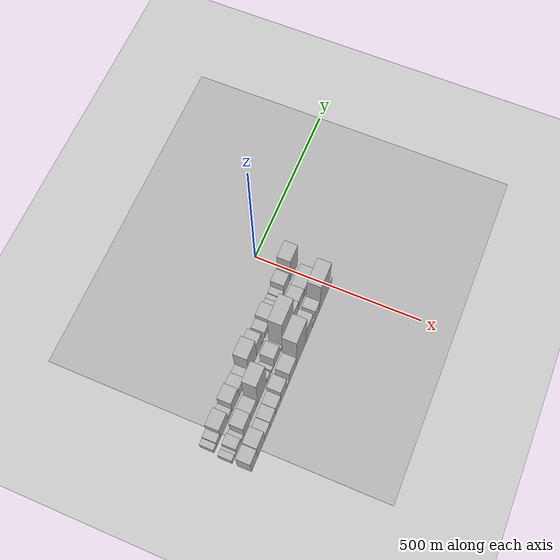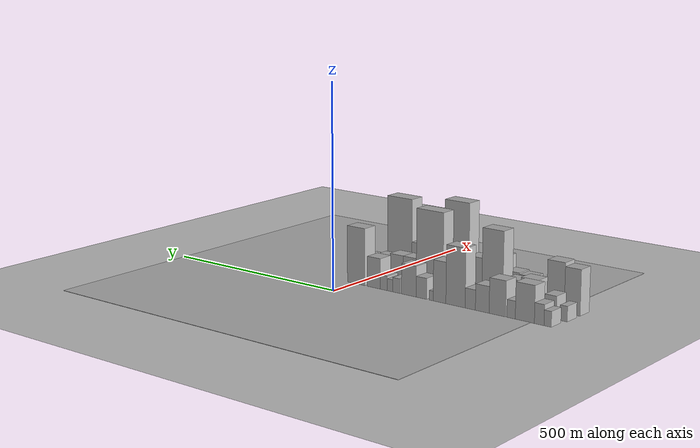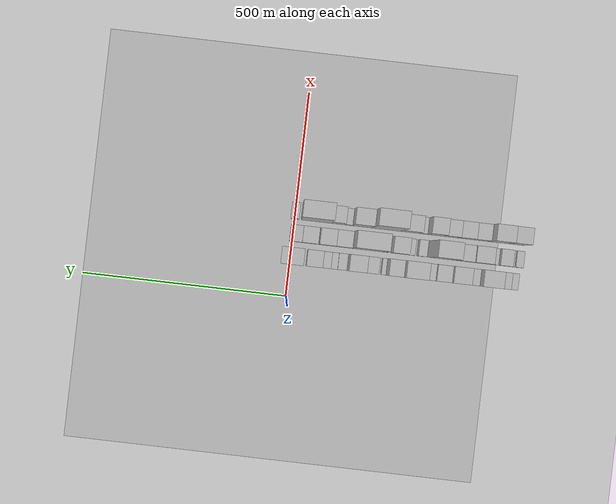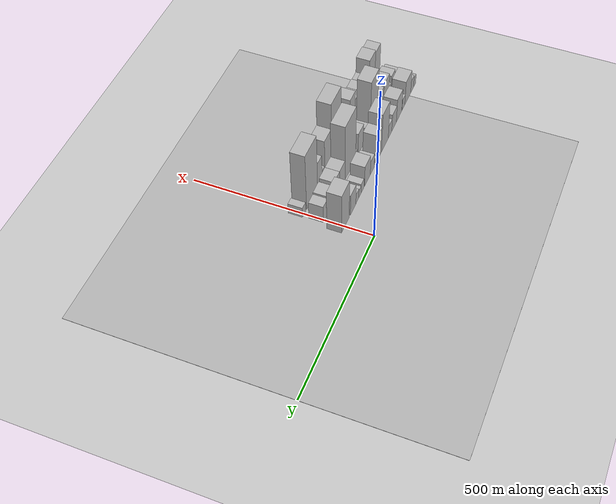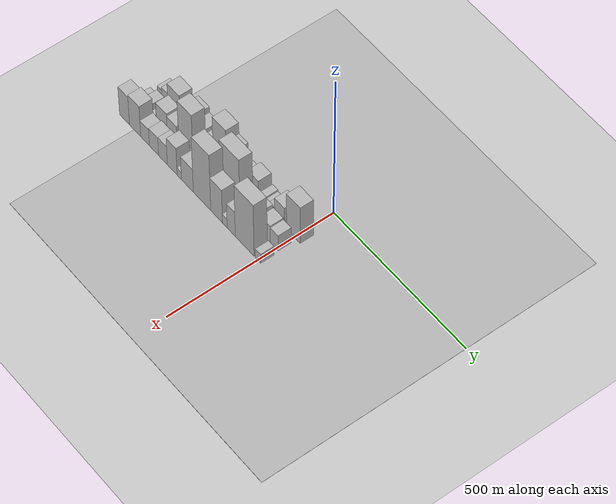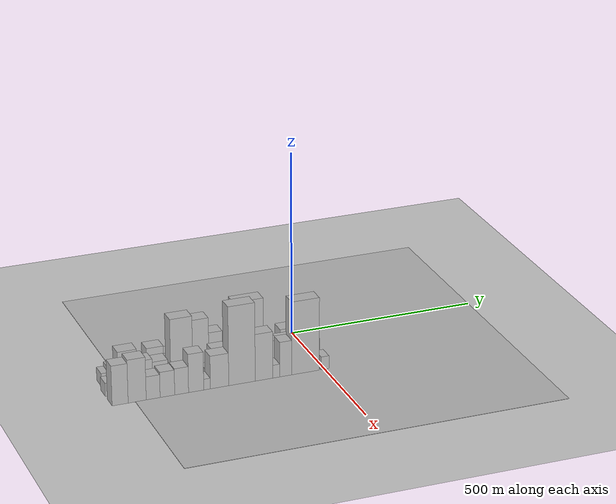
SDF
<sdf version="1.6">
 <world name="default">
  <include><name>ground_plane_1</name><uri>model://HANNAS_ground_plane</uri></include>
  <include>
   <name>ground_plane_2</name>
   <uri>model://HANNAS_ground_plane</uri>
   <pose>100 0 0  0 0 0</pose>
  </include>
  <model name="building_1">
   <static>1</static>
   <pose>100.0000 -543.7677 0 0.000000 0.000000 0.000000</pose>
   <link name="link">
    <pose>0 0 18.00 0 0 0</pose>
    <collision name="collision"><geometry><box><size>40.0000 18.4647 36.0000</size></box></geometry></collision>
    <visual name="visual">
     <cast_shadows>0</cast_shadows>
     <geometry><box><size>40.0000 18.4647 36.0000</size></box></geometry>
     <material>
      <script>
       <uri>model://HANNAS_wall/materials/scripts</uri>
       <uri>model://HANNAS_wall/materials/textures</uri>
       <name>vrc/HANNAS_wall</name>
      </script>
     </material>
    </visual>
   </link>
  </model>
  <model name="building_2">
   <static>1</static>
   <pose>100.0000 -522.0372 0 0.000000 0.000000 0.000000</pose>
   <link name="link">
    <pose>0 0 24.00 0 0 0</pose>
    <collision name="collision"><geometry><box><size>40.0000 24.9964 48.0000</size></box></geometry></collision>
    <visual name="visual">
     <cast_shadows>0</cast_shadows>
     <geometry><box><size>40.0000 24.9964 48.0000</size></box></geometry>
     <material>
      <script>
       <uri>model://HANNAS_wall/materials/scripts</uri>
       <uri>model://HANNAS_wall/materials/textures</uri>
       <name>vrc/HANNAS_wall</name>
      </script>
     </material>
    </visual>
   </link>
  </model>
  <model name="building_3">
   <static>1</static>
   <pose>100.0000 -484.5525 0 0.000000 0.000000 0.000000</pose>
   <link name="link">
    <pose>0 0 43.50 0 0 0</pose>
    <collision name="collision"><geometry><box><size>40.0000 49.9729 87.0000</size></box></geometry></collision>
    <visual name="visual">
     <cast_shadows>0</cast_shadows>
     <geometry><box><size>40.0000 49.9729 87.0000</size></box></geometry>
     <material>
      <script>
       <uri>model://HANNAS_wall/materials/scripts</uri>
       <uri>model://HANNAS_wall/materials/textures</uri>
       <name>vrc/HANNAS_wall</name>
      </script>
     </material>
    </visual>
   </link>
  </model>
  <model name="building_4">
   <static>1</static>
   <pose>100.0000 -448.2868 0 0.000000 0.000000 0.000000</pose>
   <link name="link">
    <pose>0 0 21.00 0 0 0</pose>
    <collision name="collision"><geometry><box><size>40.0000 22.5584 42.0000</size></box></geometry></collision>
    <visual name="visual">
     <cast_shadows>0</cast_shadows>
     <geometry><box><size>40.0000 22.5584 42.0000</size></box></geometry>
     <material>
      <script>
       <uri>model://HANNAS_wall/materials/scripts</uri>
       <uri>model://HANNAS_wall/materials/textures</uri>
       <name>vrc/HANNAS_wall</name>
      </script>
     </material>
    </visual>
   </link>
  </model>
  <model name="building_5">
   <static>1</static>
   <pose>100.0000 -411.7803 0 0.000000 0.000000 0.000000</pose>
   <link name="link">
    <pose>0 0 42.00 0 0 0</pose>
    <collision name="collision"><geometry><box><size>40.0000 44.4546 84.0000</size></box></geometry></collision>
    <visual name="visual">
     <cast_shadows>0</cast_shadows>
     <geometry><box><size>40.0000 44.4546 84.0000</size></box></geometry>
     <material>
      <script>
       <uri>model://HANNAS_wall/materials/scripts</uri>
       <uri>model://HANNAS_wall/materials/textures</uri>
       <name>vrc/HANNAS_wall</name>
      </script>
     </material>
    </visual>
   </link>
  </model>
  <model name="building_6">
   <static>1</static>
   <pose>100.0000 -370.8900 0 0.000000 0.000000 0.000000</pose>
   <link name="link">
    <pose>0 0 31.50 0 0 0</pose>
    <collision name="collision"><geometry><box><size>40.0000 37.3261 63.0000</size></box></geometry></collision>
    <visual name="visual">
     <cast_shadows>0</cast_shadows>
     <geometry><box><size>40.0000 37.3261 63.0000</size></box></geometry>
     <material>
      <script>
       <uri>model://HANNAS_wall/materials/scripts</uri>
       <uri>model://HANNAS_wall/materials/textures</uri>
       <name>vrc/HANNAS_wall</name>
      </script>
     </material>
    </visual>
   </link>
  </model>
  <model name="building_7">
   <static>1</static>
   <pose>100.0000 -338.0870 0 0.000000 0.000000 0.000000</pose>
   <link name="link">
    <pose>0 0 24.00 0 0 0</pose>
    <collision name="collision"><geometry><box><size>40.0000 28.2799 48.0000</size></box></geometry></collision>
    <visual name="visual">
     <cast_shadows>0</cast_shadows>
     <geometry><box><size>40.0000 28.2799 48.0000</size></box></geometry>
     <material>
      <script>
       <uri>model://HANNAS_wall/materials/scripts</uri>
       <uri>model://HANNAS_wall/materials/textures</uri>
       <name>vrc/HANNAS_wall</name>
      </script>
     </material>
    </visual>
   </link>
  </model>
  <model name="building_8">
   <static>1</static>
   <pose>100.0000 -297.0090 0 0.000000 0.000000 0.000000</pose>
   <link name="link">
    <pose>0 0 70.50 0 0 0</pose>
    <collision name="collision"><geometry><box><size>40.0000 53.8760 141.0000</size></box></geometry></collision>
    <visual name="visual">
     <cast_shadows>0</cast_shadows>
     <geometry><box><size>40.0000 53.8760 141.0000</size></box></geometry>
     <material>
      <script>
       <uri>model://HANNAS_wall/materials/scripts</uri>
       <uri>model://HANNAS_wall/materials/textures</uri>
       <name>vrc/HANNAS_wall</name>
      </script>
     </material>
    </visual>
   </link>
  </model>
  <model name="building_9">
   <static>1</static>
   <pose>100.0000 -251.9656 0 0.000000 0.000000 0.000000</pose>
   <link name="link">
    <pose>0 0 49.50 0 0 0</pose>
    <collision name="collision"><geometry><box><size>40.0000 36.2107 99.0000</size></box></geometry></collision>
    <visual name="visual">
     <cast_shadows>0</cast_shadows>
     <geometry><box><size>40.0000 36.2107 99.0000</size></box></geometry>
     <material>
      <script>
       <uri>model://HANNAS_wall/materials/scripts</uri>
       <uri>model://HANNAS_wall/materials/textures</uri>
       <name>vrc/HANNAS_wall</name>
      </script>
     </material>
    </visual>
   </link>
  </model>
  <model name="building_10">
   <static>1</static>
   <pose>100.0000 -228.2909 0 0.000000 0.000000 0.000000</pose>
   <link name="link">
    <pose>0 0 12.00 0 0 0</pose>
    <collision name="collision"><geometry><box><size>40.0000 11.1388 24.0000</size></box></geometry></collision>
    <visual name="visual">
     <cast_shadows>0</cast_shadows>
     <geometry><box><size>40.0000 11.1388 24.0000</size></box></geometry>
     <material>
      <script>
       <uri>model://HANNAS_wall/materials/scripts</uri>
       <uri>model://HANNAS_wall/materials/textures</uri>
       <name>vrc/HANNAS_wall</name>
      </script>
     </material>
    </visual>
   </link>
  </model>
  <model name="building_11">
   <static>1</static>
   <pose>100.0000 -199.6961 0 0.000000 0.000000 0.000000</pose>
   <link name="link">
    <pose>0 0 25.50 0 0 0</pose>
    <collision name="collision"><geometry><box><size>40.0000 30.0507 51.0000</size></box></geometry></collision>
    <visual name="visual">
     <cast_shadows>0</cast_shadows>
     <geometry><box><size>40.0000 30.0507 51.0000</size></box></geometry>
     <material>
      <script>
       <uri>model://HANNAS_wall/materials/scripts</uri>
       <uri>model://HANNAS_wall/materials/textures</uri>
       <name>vrc/HANNAS_wall</name>
      </script>
     </material>
    </visual>
   </link>
  </model>
  <model name="building_12">
   <static>1</static>
   <pose>100.0000 -163.0340 0 0.000000 0.000000 0.000000</pose>
   <link name="link">
    <pose>0 0 37.50 0 0 0</pose>
    <collision name="collision"><geometry><box><size>40.0000 43.2736 75.0000</size></box></geometry></collision>
    <visual name="visual">
     <cast_shadows>0</cast_shadows>
     <geometry><box><size>40.0000 43.2736 75.0000</size></box></geometry>
     <material>
      <script>
       <uri>model://HANNAS_wall/materials/scripts</uri>
       <uri>model://HANNAS_wall/materials/textures</uri>
       <name>vrc/HANNAS_wall</name>
      </script>
     </material>
    </visual>
   </link>
  </model>
  <model name="building_13">
   <static>1</static>
   <pose>100.0000 -126.6479 0 0.000000 0.000000 0.000000</pose>
   <link name="link">
    <pose>0 0 18.00 0 0 0</pose>
    <collision name="collision"><geometry><box><size>40.0000 21.4987 36.0000</size></box></geometry></collision>
    <visual name="visual">
     <cast_shadows>0</cast_shadows>
     <geometry><box><size>40.0000 21.4987 36.0000</size></box></geometry>
     <material>
      <script>
       <uri>model://HANNAS_wall/materials/scripts</uri>
       <uri>model://HANNAS_wall/materials/textures</uri>
       <name>vrc/HANNAS_wall</name>
      </script>
     </material>
    </visual>
   </link>
  </model>
  <model name="building_14">
   <static>1</static>
   <pose>100.0000 -107.7903 0 0.000000 0.000000 0.000000</pose>
   <link name="link">
    <pose>0 0 15.00 0 0 0</pose>
    <collision name="collision"><geometry><box><size>40.0000 16.2166 30.0000</size></box></geometry></collision>
    <visual name="visual">
     <cast_shadows>0</cast_shadows>
     <geometry><box><size>40.0000 16.2166 30.0000</size></box></geometry>
     <material>
      <script>
       <uri>model://HANNAS_wall/materials/scripts</uri>
       <uri>model://HANNAS_wall/materials/textures</uri>
       <name>vrc/HANNAS_wall</name>
      </script>
     </material>
    </visual>
   </link>
  </model>
  <model name="building_15">
   <static>1</static>
   <pose>100.0000 -88.9805 0 0.000000 0.000000 0.000000</pose>
   <link name="link">
    <pose>0 0 18.00 0 0 0</pose>
    <collision name="collision"><geometry><box><size>40.0000 21.4029 36.0000</size></box></geometry></collision>
    <visual name="visual">
     <cast_shadows>0</cast_shadows>
     <geometry><box><size>40.0000 21.4029 36.0000</size></box></geometry>
     <material>
      <script>
       <uri>model://HANNAS_wall/materials/scripts</uri>
       <uri>model://HANNAS_wall/materials/textures</uri>
       <name>vrc/HANNAS_wall</name>
      </script>
     </material>
    </visual>
   </link>
  </model>
  <model name="building_16">
   <static>1</static>
   <pose>100.0000 -58.6805 0 0.000000 0.000000 0.000000</pose>
   <link name="link">
    <pose>0 0 37.50 0 0 0</pose>
    <collision name="collision"><geometry><box><size>40.0000 39.1971 75.0000</size></box></geometry></collision>
    <visual name="visual">
     <cast_shadows>0</cast_shadows>
     <geometry><box><size>40.0000 39.1971 75.0000</size></box></geometry>
     <material>
      <script>
       <uri>model://HANNAS_wall/materials/scripts</uri>
       <uri>model://HANNAS_wall/materials/textures</uri>
       <name>vrc/HANNAS_wall</name>
      </script>
     </material>
    </visual>
   </link>
  </model>
  <model name="building_17">
   <static>1</static>
   <pose>100.0000 -4.2618 0 0.000000 0.000000 0.000000</pose>
   <link name="link">
    <pose>0 0 70.50 0 0 0</pose>
    <collision name="collision"><geometry><box><size>40.0000 53.6403 141.0000</size></box></geometry></collision>
    <visual name="visual">
     <cast_shadows>0</cast_shadows>
     <geometry><box><size>40.0000 53.6403 141.0000</size></box></geometry>
     <material>
      <script>
       <uri>model://HANNAS_wall/materials/scripts</uri>
       <uri>model://HANNAS_wall/materials/textures</uri>
       <name>vrc/HANNAS_wall</name>
      </script>
     </material>
    </visual>
   </link>
  </model>
  <model name="building_34">
   <static>1</static>
   <pose>155.0000 -550.8006 0 0.000000 0.000000 0.000000</pose>
   <link name="link">
    <pose>0 0 18.00 0 0 0</pose>
    <collision name="collision"><geometry><box><size>40.0000 18.3988 36.0000</size></box></geometry></collision>
    <visual name="visual">
     <cast_shadows>0</cast_shadows>
     <geometry><box><size>40.0000 18.3988 36.0000</size></box></geometry>
     <material>
      <script>
       <uri>model://HANNAS_wall/materials/scripts</uri>
       <uri>model://HANNAS_wall/materials/textures</uri>
       <name>vrc/HANNAS_wall</name>
      </script>
     </material>
    </visual>
   </link>
  </model>
  <model name="building_35">
   <static>1</static>
   <pose>155.0000 -536.6350 0 0.000000 0.000000 0.000000</pose>
   <link name="link">
    <pose>0 0 12.00 0 0 0</pose>
    <collision name="collision"><geometry><box><size>40.0000 9.9324 24.0000</size></box></geometry></collision>
    <visual name="visual">
     <cast_shadows>0</cast_shadows>
     <geometry><box><size>40.0000 9.9324 24.0000</size></box></geometry>
     <material>
      <script>
       <uri>model://HANNAS_wall/materials/scripts</uri>
       <uri>model://HANNAS_wall/materials/textures</uri>
       <name>vrc/HANNAS_wall</name>
      </script>
     </material>
    </visual>
   </link>
  </model>
  <model name="building_36">
   <static>1</static>
   <pose>155.0000 -516.3487 0 0.000000 0.000000 0.000000</pose>
   <link name="link">
    <pose>0 0 27.00 0 0 0</pose>
    <collision name="collision"><geometry><box><size>40.0000 30.6402 54.0000</size></box></geometry></collision>
    <visual name="visual">
     <cast_shadows>0</cast_shadows>
     <geometry><box><size>40.0000 30.6402 54.0000</size></box></geometry>
     <material>
      <script>
       <uri>model://HANNAS_wall/materials/scripts</uri>
       <uri>model://HANNAS_wall/materials/textures</uri>
       <name>vrc/HANNAS_wall</name>
      </script>
     </material>
    </visual>
   </link>
  </model>
  <model name="building_37">
   <static>1</static>
   <pose>155.0000 -493.0272 0 0.000000 0.000000 0.000000</pose>
   <link name="link">
    <pose>0 0 15.00 0 0 0</pose>
    <collision name="collision"><geometry><box><size>40.0000 16.0028 30.0000</size></box></geometry></collision>
    <visual name="visual">
     <cast_shadows>0</cast_shadows>
     <geometry><box><size>40.0000 16.0028 30.0000</size></box></geometry>
     <material>
      <script>
       <uri>model://HANNAS_wall/materials/scripts</uri>
       <uri>model://HANNAS_wall/materials/textures</uri>
       <name>vrc/HANNAS_wall</name>
      </script>
     </material>
    </visual>
   </link>
  </model>
  <model name="building_38">
   <static>1</static>
   <pose>155.0000 -459.6206 0 0.000000 0.000000 0.000000</pose>
   <link name="link">
    <pose>0 0 40.50 0 0 0</pose>
    <collision name="collision"><geometry><box><size>40.0000 44.8104 81.0000</size></box></geometry></collision>
    <visual name="visual">
     <cast_shadows>0</cast_shadows>
     <geometry><box><size>40.0000 44.8104 81.0000</size></box></geometry>
     <material>
      <script>
       <uri>model://HANNAS_wall/materials/scripts</uri>
       <uri>model://HANNAS_wall/materials/textures</uri>
       <name>vrc/HANNAS_wall</name>
      </script>
     </material>
    </visual>
   </link>
  </model>
  <model name="building_39">
   <static>1</static>
   <pose>155.0000 -417.0408 0 0.000000 0.000000 0.000000</pose>
   <link name="link">
    <pose>0 0 36.00 0 0 0</pose>
    <collision name="collision"><geometry><box><size>40.0000 40.3492 72.0000</size></box></geometry></collision>
    <visual name="visual">
     <cast_shadows>0</cast_shadows>
     <geometry><box><size>40.0000 40.3492 72.0000</size></box></geometry>
     <material>
      <script>
       <uri>model://HANNAS_wall/materials/scripts</uri>
       <uri>model://HANNAS_wall/materials/textures</uri>
       <name>vrc/HANNAS_wall</name>
      </script>
     </material>
    </visual>
   </link>
  </model>
  <model name="building_40">
   <static>1</static>
   <pose>155.0000 -393.1645 0 0.000000 0.000000 0.000000</pose>
   <link name="link">
    <pose>0 0 9.00 0 0 0</pose>
    <collision name="collision"><geometry><box><size>40.0000 7.4033 18.0000</size></box></geometry></collision>
    <visual name="visual">
     <cast_shadows>0</cast_shadows>
     <geometry><box><size>40.0000 7.4033 18.0000</size></box></geometry>
     <material>
      <script>
       <uri>model://HANNAS_wall/materials/scripts</uri>
       <uri>model://HANNAS_wall/materials/textures</uri>
       <name>vrc/HANNAS_wall</name>
      </script>
     </material>
    </visual>
   </link>
  </model>
  <model name="building_41">
   <static>1</static>
   <pose>155.0000 -360.5943 0 0.000000 0.000000 0.000000</pose>
   <link name="link">
    <pose>0 0 90.00 0 0 0</pose>
    <collision name="collision"><geometry><box><size>40.0000 57.7371 180.0000</size></box></geometry></collision>
    <visual name="visual">
     <cast_shadows>0</cast_shadows>
     <geometry><box><size>40.0000 57.7371 180.0000</size></box></geometry>
     <material>
      <script>
       <uri>model://HANNAS_wall/materials/scripts</uri>
       <uri>model://HANNAS_wall/materials/textures</uri>
       <name>vrc/HANNAS_wall</name>
      </script>
     </material>
    </visual>
   </link>
  </model>
  <model name="building_42">
   <static>1</static>
   <pose>155.0000 -316.0157 0 0.000000 0.000000 0.000000</pose>
   <link name="link">
    <pose>0 0 18.00 0 0 0</pose>
    <collision name="collision"><geometry><box><size>40.0000 21.4200 36.0000</size></box></geometry></collision>
    <visual name="visual">
     <cast_shadows>0</cast_shadows>
     <geometry><box><size>40.0000 21.4200 36.0000</size></box></geometry>
     <material>
      <script>
       <uri>model://HANNAS_wall/materials/scripts</uri>
       <uri>model://HANNAS_wall/materials/textures</uri>
       <name>vrc/HANNAS_wall</name>
      </script>
     </material>
    </visual>
   </link>
  </model>
  <model name="building_43">
   <static>1</static>
   <pose>155.0000 -291.9751 0 0.000000 0.000000 0.000000</pose>
   <link name="link">
    <pose>0 0 13.50 0 0 0</pose>
    <collision name="collision"><geometry><box><size>40.0000 12.6612 27.0000</size></box></geometry></collision>
    <visual name="visual">
     <cast_shadows>0</cast_shadows>
     <geometry><box><size>40.0000 12.6612 27.0000</size></box></geometry>
     <material>
      <script>
       <uri>model://HANNAS_wall/materials/scripts</uri>
       <uri>model://HANNAS_wall/materials/textures</uri>
       <name>vrc/HANNAS_wall</name>
      </script>
     </material>
    </visual>
   </link>
  </model>
  <model name="building_44">
   <static>1</static>
   <pose>155.0000 -260.3991 0 0.000000 0.000000 0.000000</pose>
   <link name="link">
    <pose>0 0 39.00 0 0 0</pose>
    <collision name="collision"><geometry><box><size>40.0000 40.4910 78.0000</size></box></geometry></collision>
    <visual name="visual">
     <cast_shadows>0</cast_shadows>
     <geometry><box><size>40.0000 40.4910 78.0000</size></box></geometry>
     <material>
      <script>
       <uri>model://HANNAS_wall/materials/scripts</uri>
       <uri>model://HANNAS_wall/materials/textures</uri>
       <name>vrc/HANNAS_wall</name>
      </script>
     </material>
    </visual>
   </link>
  </model>
  <model name="building_45">
   <static>1</static>
   <pose>155.0000 -228.0364 0 0.000000 0.000000 0.000000</pose>
   <link name="link">
    <pose>0 0 13.50 0 0 0</pose>
    <collision name="collision"><geometry><box><size>40.0000 12.2343 27.0000</size></box></geometry></collision>
    <visual name="visual">
     <cast_shadows>0</cast_shadows>
     <geometry><box><size>40.0000 12.2343 27.0000</size></box></geometry>
     <material>
      <script>
       <uri>model://HANNAS_wall/materials/scripts</uri>
       <uri>model://HANNAS_wall/materials/textures</uri>
       <name>vrc/HANNAS_wall</name>
      </script>
     </material>
    </visual>
   </link>
  </model>
  <model name="building_46">
   <static>1</static>
   <pose>155.0000 -182.8427 0 0.000000 0.000000 0.000000</pose>
   <link name="link">
    <pose>0 0 99.00 0 0 0</pose>
    <collision name="collision"><geometry><box><size>40.0000 78.1531 198.0000</size></box></geometry></collision>
    <visual name="visual">
     <cast_shadows>0</cast_shadows>
     <geometry><box><size>40.0000 78.1531 198.0000</size></box></geometry>
     <material>
      <script>
       <uri>model://HANNAS_wall/materials/scripts</uri>
       <uri>model://HANNAS_wall/materials/textures</uri>
       <name>vrc/HANNAS_wall</name>
      </script>
     </material>
    </visual>
   </link>
  </model>
  <model name="building_47">
   <static>1</static>
   <pose>155.0000 -124.4117 0 0.000000 0.000000 0.000000</pose>
   <link name="link">
    <pose>0 0 37.50 0 0 0</pose>
    <collision name="collision"><geometry><box><size>40.0000 38.7090 75.0000</size></box></geometry></collision>
    <visual name="visual">
     <cast_shadows>0</cast_shadows>
     <geometry><box><size>40.0000 38.7090 75.0000</size></box></geometry>
     <material>
      <script>
       <uri>model://HANNAS_wall/materials/scripts</uri>
       <uri>model://HANNAS_wall/materials/textures</uri>
       <name>vrc/HANNAS_wall</name>
      </script>
     </material>
    </visual>
   </link>
  </model>
  <model name="building_48">
   <static>1</static>
   <pose>155.0000 -85.0469 0 0.000000 0.000000 0.000000</pose>
   <link name="link">
    <pose>0 0 37.50 0 0 0</pose>
    <collision name="collision"><geometry><box><size>40.0000 40.0205 75.0000</size></box></geometry></collision>
    <visual name="visual">
     <cast_shadows>0</cast_shadows>
     <geometry><box><size>40.0000 40.0205 75.0000</size></box></geometry>
     <material>
      <script>
       <uri>model://HANNAS_wall/materials/scripts</uri>
       <uri>model://HANNAS_wall/materials/textures</uri>
       <name>vrc/HANNAS_wall</name>
      </script>
     </material>
    </visual>
   </link>
  </model>
  <model name="building_49">
   <static>1</static>
   <pose>155.0000 -42.5896 0 0.000000 0.000000 0.000000</pose>
   <link name="link">
    <pose>0 0 33.00 0 0 0</pose>
    <collision name="collision"><geometry><box><size>40.0000 38.8941 66.0000</size></box></geometry></collision>
    <visual name="visual">
     <cast_shadows>0</cast_shadows>
     <geometry><box><size>40.0000 38.8941 66.0000</size></box></geometry>
     <material>
      <script>
       <uri>model://HANNAS_wall/materials/scripts</uri>
       <uri>model://HANNAS_wall/materials/textures</uri>
       <name>vrc/HANNAS_wall</name>
      </script>
     </material>
    </visual>
   </link>
  </model>
  <model name="building_50">
   <static>1</static>
   <pose>155.0000 -7.7787 0 0.000000 0.000000 0.000000</pose>
   <link name="link">
    <pose>0 0 30.00 0 0 0</pose>
    <collision name="collision"><geometry><box><size>40.0000 30.7278 60.0000</size></box></geometry></collision>
    <visual name="visual">
     <cast_shadows>0</cast_shadows>
     <geometry><box><size>40.0000 30.7278 60.0000</size></box></geometry>
     <material>
      <script>
       <uri>model://HANNAS_wall/materials/scripts</uri>
       <uri>model://HANNAS_wall/materials/textures</uri>
       <name>vrc/HANNAS_wall</name>
      </script>
     </material>
    </visual>
   </link>
  </model>
  <model name="building_69">
   <static>1</static>
   <pose>210.0000 -539.4022 0 0.000000 0.000000 0.000000</pose>
   <link name="link">
    <pose>0 0 54.00 0 0 0</pose>
    <collision name="collision"><geometry><box><size>40.0000 41.1955 108.0000</size></box></geometry></collision>
    <visual name="visual">
     <cast_shadows>0</cast_shadows>
     <geometry><box><size>40.0000 41.1955 108.0000</size></box></geometry>
     <material>
      <script>
       <uri>model://HANNAS_wall/materials/scripts</uri>
       <uri>model://HANNAS_wall/materials/textures</uri>
       <name>vrc/HANNAS_wall</name>
      </script>
     </material>
    </visual>
   </link>
  </model>
  <model name="building_70">
   <static>1</static>
   <pose>210.0000 -495.5633 0 0.000000 0.000000 0.000000</pose>
   <link name="link">
    <pose>0 0 58.50 0 0 0</pose>
    <collision name="collision"><geometry><box><size>40.0000 46.4823 117.0000</size></box></geometry></collision>
    <visual name="visual">
     <cast_shadows>0</cast_shadows>
     <geometry><box><size>40.0000 46.4823 117.0000</size></box></geometry>
     <material>
      <script>
       <uri>model://HANNAS_wall/materials/scripts</uri>
       <uri>model://HANNAS_wall/materials/textures</uri>
       <name>vrc/HANNAS_wall</name>
      </script>
     </material>
    </visual>
   </link>
  </model>
  <model name="building_71">
   <static>1</static>
   <pose>210.0000 -454.3490 0 0.000000 0.000000 0.000000</pose>
   <link name="link">
    <pose>0 0 31.50 0 0 0</pose>
    <collision name="collision"><geometry><box><size>40.0000 35.9462 63.0000</size></box></geometry></collision>
    <visual name="visual">
     <cast_shadows>0</cast_shadows>
     <geometry><box><size>40.0000 35.9462 63.0000</size></box></geometry>
     <material>
      <script>
       <uri>model://HANNAS_wall/materials/scripts</uri>
       <uri>model://HANNAS_wall/materials/textures</uri>
       <name>vrc/HANNAS_wall</name>
      </script>
     </material>
    </visual>
   </link>
  </model>
  <model name="building_72">
   <static>1</static>
   <pose>210.0000 -417.3780 0 0.000000 0.000000 0.000000</pose>
   <link name="link">
    <pose>0 0 34.50 0 0 0</pose>
    <collision name="collision"><geometry><box><size>40.0000 37.9959 69.0000</size></box></geometry></collision>
    <visual name="visual">
     <cast_shadows>0</cast_shadows>
     <geometry><box><size>40.0000 37.9959 69.0000</size></box></geometry>
     <material>
      <script>
       <uri>model://HANNAS_wall/materials/scripts</uri>
       <uri>model://HANNAS_wall/materials/textures</uri>
       <name>vrc/HANNAS_wall</name>
      </script>
     </material>
    </visual>
   </link>
  </model>
  <model name="building_73">
   <static>1</static>
   <pose>210.0000 -380.3522 0 0.000000 0.000000 0.000000</pose>
   <link name="link">
    <pose>0 0 36.00 0 0 0</pose>
    <collision name="collision"><geometry><box><size>40.0000 36.0558 72.0000</size></box></geometry></collision>
    <visual name="visual">
     <cast_shadows>0</cast_shadows>
     <geometry><box><size>40.0000 36.0558 72.0000</size></box></geometry>
     <material>
      <script>
       <uri>model://HANNAS_wall/materials/scripts</uri>
       <uri>model://HANNAS_wall/materials/textures</uri>
       <name>vrc/HANNAS_wall</name>
      </script>
     </material>
    </visual>
   </link>
  </model>
  <model name="building_74">
   <static>1</static>
   <pose>210.0000 -342.4402 0 0.000000 0.000000 0.000000</pose>
   <link name="link">
    <pose>0 0 52.50 0 0 0</pose>
    <collision name="collision"><geometry><box><size>40.0000 39.7682 105.0000</size></box></geometry></collision>
    <visual name="visual">
     <cast_shadows>0</cast_shadows>
     <geometry><box><size>40.0000 39.7682 105.0000</size></box></geometry>
     <material>
      <script>
       <uri>model://HANNAS_wall/materials/scripts</uri>
       <uri>model://HANNAS_wall/materials/textures</uri>
       <name>vrc/HANNAS_wall</name>
      </script>
     </material>
    </visual>
   </link>
  </model>
  <model name="building_75">
   <static>1</static>
   <pose>210.0000 -313.8817 0 0.000000 0.000000 0.000000</pose>
   <link name="link">
    <pose>0 0 15.00 0 0 0</pose>
    <collision name="collision"><geometry><box><size>40.0000 17.3487 30.0000</size></box></geometry></collision>
    <visual name="visual">
     <cast_shadows>0</cast_shadows>
     <geometry><box><size>40.0000 17.3487 30.0000</size></box></geometry>
     <material>
      <script>
       <uri>model://HANNAS_wall/materials/scripts</uri>
       <uri>model://HANNAS_wall/materials/textures</uri>
       <name>vrc/HANNAS_wall</name>
      </script>
     </material>
    </visual>
   </link>
  </model>
  <model name="building_76">
   <static>1</static>
   <pose>210.0000 -280.9880 0 0.000000 0.000000 0.000000</pose>
   <link name="link">
    <pose>0 0 45.00 0 0 0</pose>
    <collision name="collision"><geometry><box><size>40.0000 48.4388 90.0000</size></box></geometry></collision>
    <visual name="visual">
     <cast_shadows>0</cast_shadows>
     <geometry><box><size>40.0000 48.4388 90.0000</size></box></geometry>
     <material>
      <script>
       <uri>model://HANNAS_wall/materials/scripts</uri>
       <uri>model://HANNAS_wall/materials/textures</uri>
       <name>vrc/HANNAS_wall</name>
      </script>
     </material>
    </visual>
   </link>
  </model>
  <model name="building_77">
   <static>1</static>
   <pose>210.0000 -221.6760 0 0.000000 0.000000 0.000000</pose>
   <link name="link">
    <pose>0 0 108.00 0 0 0</pose>
    <collision name="collision"><geometry><box><size>40.0000 70.1851 216.0000</size></box></geometry></collision>
    <visual name="visual">
     <cast_shadows>0</cast_shadows>
     <geometry><box><size>40.0000 70.1851 216.0000</size></box></geometry>
     <material>
      <script>
       <uri>model://HANNAS_wall/materials/scripts</uri>
       <uri>model://HANNAS_wall/materials/textures</uri>
       <name>vrc/HANNAS_wall</name>
      </script>
     </material>
    </visual>
   </link>
  </model>
  <model name="building_78">
   <static>1</static>
   <pose>210.0000 -163.2290 0 0.000000 0.000000 0.000000</pose>
   <link name="link">
    <pose>0 0 64.50 0 0 0</pose>
    <collision name="collision"><geometry><box><size>40.0000 46.7090 129.0000</size></box></geometry></collision>
    <visual name="visual">
     <cast_shadows>0</cast_shadows>
     <geometry><box><size>40.0000 46.7090 129.0000</size></box></geometry>
     <material>
      <script>
       <uri>model://HANNAS_wall/materials/scripts</uri>
       <uri>model://HANNAS_wall/materials/textures</uri>
       <name>vrc/HANNAS_wall</name>
      </script>
     </material>
    </visual>
   </link>
  </model>
  <model name="building_79">
   <static>1</static>
   <pose>210.0000 -130.4958 0 0.000000 0.000000 0.000000</pose>
   <link name="link">
    <pose>0 0 18.00 0 0 0</pose>
    <collision name="collision"><geometry><box><size>40.0000 18.7573 36.0000</size></box></geometry></collision>
    <visual name="visual">
     <cast_shadows>0</cast_shadows>
     <geometry><box><size>40.0000 18.7573 36.0000</size></box></geometry>
     <material>
      <script>
       <uri>model://HANNAS_wall/materials/scripts</uri>
       <uri>model://HANNAS_wall/materials/textures</uri>
       <name>vrc/HANNAS_wall</name>
      </script>
     </material>
    </visual>
   </link>
  </model>
  <model name="building_80">
   <static>1</static>
   <pose>210.0000 -105.0839 0 0.000000 0.000000 0.000000</pose>
   <link name="link">
    <pose>0 0 48.00 0 0 0</pose>
    <collision name="collision"><geometry><box><size>40.0000 32.0667 96.0000</size></box></geometry></collision>
    <visual name="visual">
     <cast_shadows>0</cast_shadows>
     <geometry><box><size>40.0000 32.0667 96.0000</size></box></geometry>
     <material>
      <script>
       <uri>model://HANNAS_wall/materials/scripts</uri>
       <uri>model://HANNAS_wall/materials/textures</uri>
       <name>vrc/HANNAS_wall</name>
      </script>
     </material>
    </visual>
   </link>
  </model>
  <model name="building_81">
   <static>1</static>
   <pose>210.0000 -51.9729 0 0.000000 0.000000 0.000000</pose>
   <link name="link">
    <pose>0 0 100.50 0 0 0</pose>
    <collision name="collision"><geometry><box><size>40.0000 74.1553 201.0000</size></box></geometry></collision>
    <visual name="visual">
     <cast_shadows>0</cast_shadows>
     <geometry><box><size>40.0000 74.1553 201.0000</size></box></geometry>
     <material>
      <script>
       <uri>model://HANNAS_wall/materials/scripts</uri>
       <uri>model://HANNAS_wall/materials/textures</uri>
       <name>vrc/HANNAS_wall</name>
      </script>
     </material>
    </visual>
   </link>
  </model>
  <model name="building_82">
   <static>1</static>
   <pose>210.0000 0.6866 0 0.000000 0.000000 0.000000</pose>
   <link name="link">
    <pose>0 0 18.00 0 0 0</pose>
    <collision name="collision"><geometry><box><size>40.0000 21.1638 36.0000</size></box></geometry></collision>
    <visual name="visual">
     <cast_shadows>0</cast_shadows>
     <geometry><box><size>40.0000 21.1638 36.0000</size></box></geometry>
     <material>
      <script>
       <uri>model://HANNAS_wall/materials/scripts</uri>
       <uri>model://HANNAS_wall/materials/textures</uri>
       <name>vrc/HANNAS_wall</name>
      </script>
     </material>
    </visual>
   </link>
  </model>
 </world>
</sdf>
